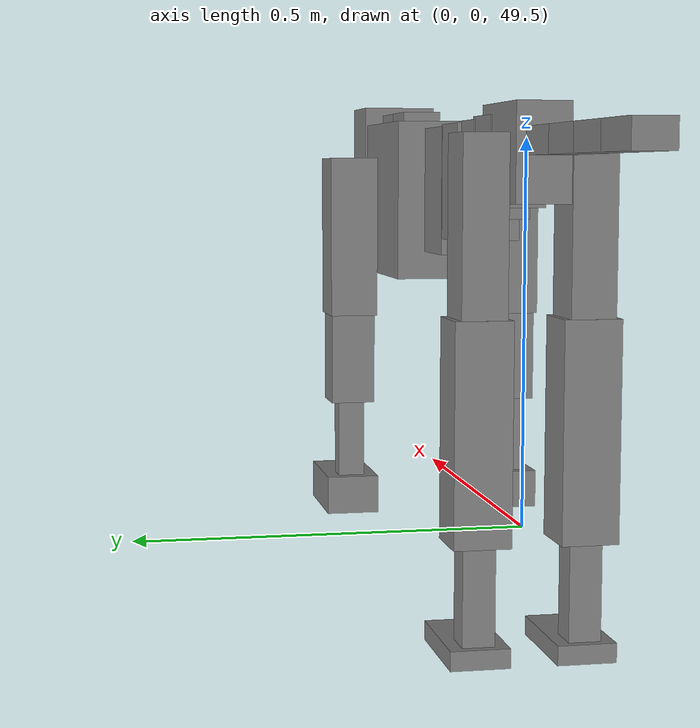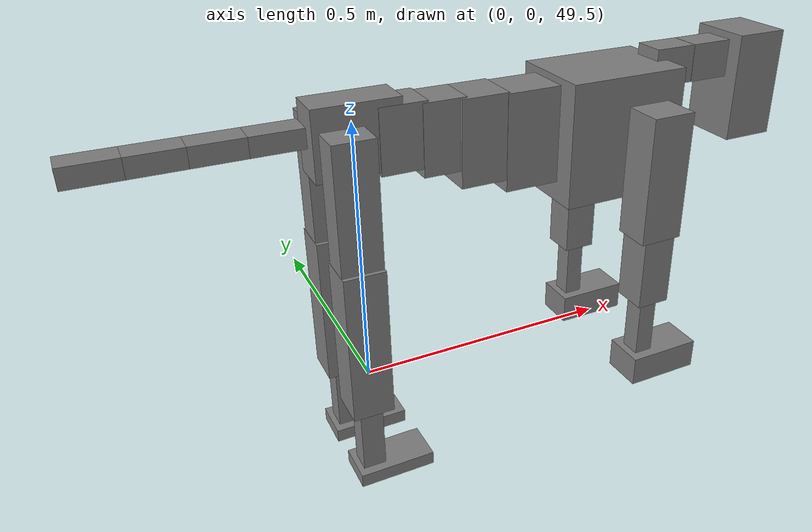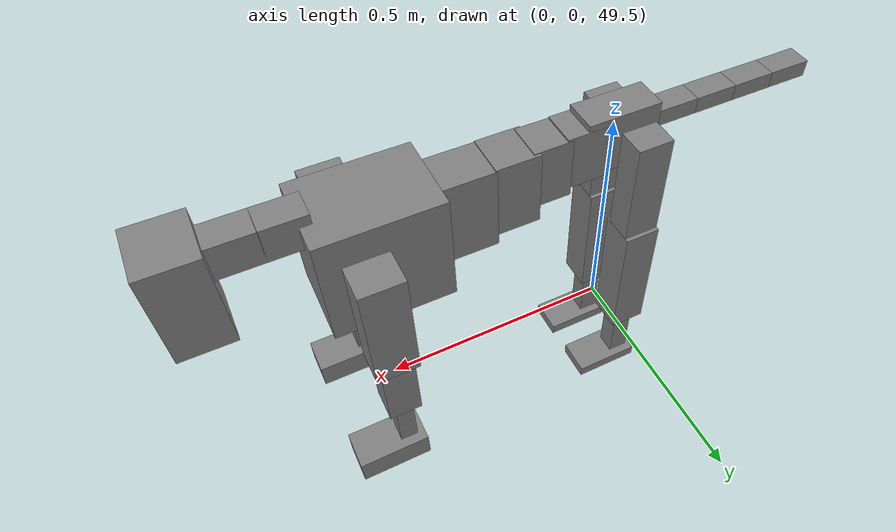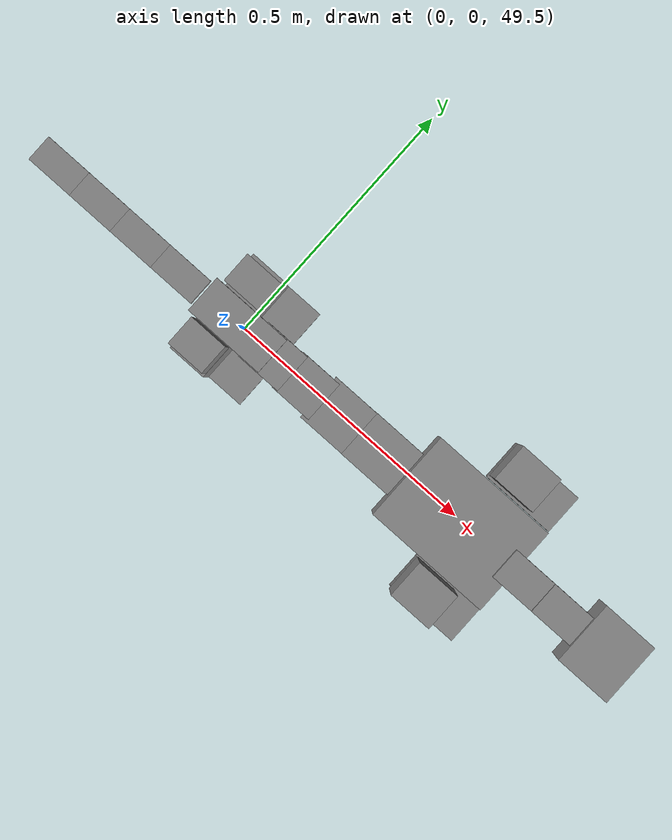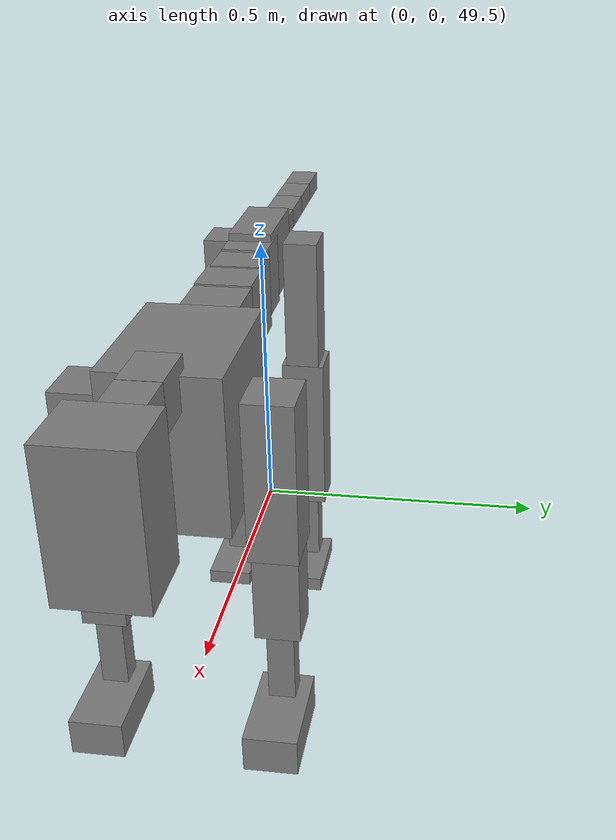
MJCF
<mujoco model="dog">

    <default>
        <joint armature="0.02" stiffness="1" damping="0.2" limited="true"/>
        <geom condim="3" friction="1 0.05 0.05" margin="0.01"/>
        <motor ctrllimited="true" ctrlrange="-1.0 1.0" forcelimited="true" gear="50"/>
    </default>

    <compiler inertiafromgeom="true" angle="radian"/>

    <option timestep="0.016" iterations="50" tolerance="1e-10" solver="Newton" jacobian="dense" cone="pyramidal"/>

    <size nconmax="20000" njmax="60000" nstack="5000000"/>
    <visual>
        <map force="0.1" zfar="30"/>
        <rgba haze="0.15 0.25 0.35 1"/>
        <quality shadowsize="2048"/>
        <global offwidth="800" offheight="800"/>
    </visual>

    <asset>
        <texture type="skybox" builtin="gradient" rgb1="0.3 0.5 0.7" rgb2="0 0 0" width="512" height="512"/>
        <texture name="texplane" type="2d" builtin="checker" rgb1=".2 .3 .4" rgb2=".1 0.15 0.2" width="512" height="512"
                 mark="cross" markrgb=".8 .8 .8"/>
        <texture name="texgeom" type="cube" builtin="flat" mark="cross" width="127" height="1278" rgb1="0.8 0.6 0.4"
                 rgb2="0.8 0.6 0.4" markrgb="1 1 1" random="0.01"/>

        <material name="matplane" reflectance="0.3" texture="texplane" texrepeat="1 1" texuniform="true"/>
        <material name="matgeom" texture="texgeom" texuniform="true" rgba="0.8 0.6 .4 1"/>
    </asset>

    <worldbody>
        <geom name="floor" pos="0 0 0" size="0 0 .25" type="plane" material="matplane" condim="3"/>

        <light directional="false" diffuse=".2 .2 .2" specular="0 0 0" pos="0 0 5" dir="0 0 -1" castshadow="false"/>
        <light mode="targetbodycom" target="torso" directional="false" diffuse=".8 .8 .8" specular="0.3 0.3 0.3"
               pos="0 0 4.0" dir="0 0 -1"/>

        <body name="root" pos="0 0 50">
            <freejoint name="root_1"/>
            <geom type="box" pos="0 0 -0.02" size="0.0774  0.0358  0.063" density="2030"/>

            <body name="spine1" pos="0.054 0 0">
                <joint name="spine1_y" axis="0 1 0" range="0 0.7" limited="true"/>
                <geom type="box" pos="0.02375 0 -0.03" size="0.04375  0.0375  0.05985" density="2030"/>

                <body name="spine2" pos="0.0612 0 0">
                    <joint name="spine2_y" axis="0 1 0" range="-0.15 0.15" limited="true"/>
                    <geom type="box" pos="0.03555  0  -0.04" size="0.04055  0.039  0.06615" density="2030"/>

                    <body name="spine3" pos="0.0730 0 0">
                        <joint name="spine3_y" axis="0 1 0" range="-0.15 0.15" limited="true"/>
                        <geom type="box" pos="0.03555  0  -0.057" size="0.04555  0.0445  0.081" density="2030"/>

                        <body name="spine4" pos="0.0780 0 0">
                            <joint name="spine4_y" axis="0 1 0" range="-0.15 0.15" limited="true"/>
                            <geom type="box" pos="0.05265  0  -0.07" size="0.05265  0.045  0.09135" density="2030"/>

                            <body name="torso" pos="0.1082 0 0">
                                <joint name="torso_y" axis="0 1 0" range="-0.15 0.15" limited="true"/>
                                <geom type="box" pos="0.11925  0  -0.085" size="0.11925  0.085  0.11745"
                                      density="2030"/>

                                <body name="neck1" pos="0.2160  0   0.0180">
                                    <joint name="neck1_y" axis="0 1 0" range="-1.2  -1" limited="true"/>
                                    <geom type="box" pos="0.0423  0  0" size="0.0423  0.03  0.036" density="2325"/>

                                    <body name="neck2" pos="0.0853  0  0">
                                        <joint name="neck2_y" axis="0 1 0" range="0.1  0" limited="true"/>
                                        <geom type="box" pos="0.0423  0  0" size="0.0423  0.03  0.036" density="2325"/>

                                        <body name="head" pos="0.0853  0  0">
                                            <joint name="head_y" axis="0 1 0" range="-0.3  -0.2" limited="true"/>
                                            <geom type="box" pos="0.0531  0  -0.055" size="0.0531  0.06  0.1044"
                                                  density="4030"/>

                                        </body>
                                    </body>
                                </body>

                                <body name="front_shoulder" pos="0.156  0   -0.0480">
                                    <joint name="front_shoulder_y" axis="0 1 0" range="-1 1.5" limited="true"/>
                                    <geom type="box" pos="0 0.13 -0.0960" size="0.0425  0.0364  0.1226" density="1158"/>
                                    <geom type="box" pos="0 -0.13 -0.0960" size="0.0425  0.0364  0.1226"
                                          density="1158"/>

                                    <body name="front_elbow" pos="0  0  -0.1919">
                                        <joint name="front_elbow_y" axis="0 1 0" range="-2 0" limited="true"/>
                                        <geom type="box" pos="0 0.13 -0.0827" size="0.0331  0.0338  0.0827"
                                              density="1081"/>
                                        <geom type="box" pos="0 -0.13 -0.0827" size="0.0331  0.0338  0.0827"
                                              density="1081"/>

                                        <body name="front_wrist" pos="0  0  -0.1653">
                                            <joint name="front_wrist_y" axis="0 1 0" range="-0.2 0" limited="true"/>
                                            <geom type="box" pos="0 0.13 -0.0668" size="0.0183  0.0203  0.0800"
                                                  density="1664"/>
                                            <geom type="box" pos="0 -0.13 -0.0668" size="0.0183  0.0203  0.0800"
                                                  density="1664"/>

                                            <body name="front_finger_end" pos="0  0  -0.1336">
                                                <joint name="front_finger_y" axis="0 1 0" range="-0.4 1"
                                                       limited="true"/>
                                                <geom type="box" pos="0.0403  0.13  -0.0143"
                                                      size="0.0738  0.0403  0.0293" density="1515"/>
                                                <geom type="box" pos="0.0403  -0.13  -0.0143"
                                                      size="0.0738  0.0403  0.0293" density="1515"/>

                                            </body>

                                        </body>
                                    </body>
                                </body>

                            </body>
                        </body>
                    </body>
                </body>
            </body>

            <body name="back_hip" pos="-0.03 0 -0.018">
                <joint name="back_hip_y" axis="0 1 0" range="-1.5 0.3" limited="true"/>
                <geom type="box" pos="0 0.07 -0.1118" size="0.0376  0.0295  0.1346" density="1154"/>
                <geom type="box" pos="0 -0.07 -0.1118" size="0.0376  0.0295  0.1346" density="1154"/>

                <body name="back_knee" pos="0  0  -0.2236">
                    <joint name="back_knee_y" axis="0 1 0" range="0 2.8" limited="true"/>
                    <geom type="box" pos="0 0.07 -0.1278" size="0.0381  0.0376  0.1433" density="1227"/>
                    <geom type="box" pos="0 -0.07 -0.1278" size="0.0381  0.0376  0.1433" density="1227"/>

                    <body name="back_ankle" pos="0  0  -0.2555">
                        <joint name="back_ankle_y" axis="0 1 0" range="-2.2 0" limited="true"/>
                        <geom type="box" pos="0 0.07 -0.0800" size="0.0215  0.0215  0.0912" density="1284"/>
                        <geom type="box" pos="0 -0.07 -0.0800" size="0.0215  0.0215  0.0912" density="1284"/>

                        <body name="back_toe_end" pos="0  0  -0.1600">
                            <joint name="back_toe_y" axis="0 1 0" range="-0.4 1" limited="true"/>
                            <geom type="box" pos="0.0392  0.07  0.0021" size="0.0718  0.0392  0.0129" density="1515"/>
                            <geom type="box" pos="0.0392  -0.07  0.0021" size="0.0718  0.0392  0.0129" density="1515"/>

                        </body>
                    </body>
                </body>
            </body>

            <body name="tail1" pos="-0.074 0 -0.006">
                <joint name="tail1_y" axis="0 1 0" range="-0.2 0.2" limited="true"/>
                <geom type="box" pos="-0.0536  0  0" size="0.045  0.025  0.0175" density="1587"/>

                <body name="tail2" pos="-0.09 0 0">
                    <joint name="tail2_y" axis="0 1 0" range="-0.2 0.2" limited="true"/>
                    <geom type="box" pos="-0.0536  0  0" size="0.045  0.025  0.0175" density="1587"/>

                    <body name="tail3" pos="-0.09 0 0">
                        <joint name="tail3_y" axis="0 1 0" range="-0.2 0.2" limited="true"/>
                        <geom type="box" pos="-0.0536  0  0" size="0.045  0.025  0.0175" density="1587"/>

                        <body name="tail4" pos="-0.09 0 0">
                            <joint name="tail4_y" axis="0 1 0" range="-0.2 0.2" limited="true"/>
                            <geom type="box" pos="-0.0536  0  0" size="0.045  0.025  0.0175" density="1587"/>

                        </body>
                    </body>
                </body>
            </body>
        </body>
    </worldbody>

    <actuator>
        <motor joint="spine1_y" forcerange="-150 150     "/>
        <motor joint="spine2_y" forcerange="-150 150     "/>
        <motor joint="spine3_y" forcerange="-150 150     "/>
        <motor joint="spine4_y" forcerange="-150 150     "/>
        <motor joint="torso_y" forcerange="-150 150     "/>
        <motor joint="neck1_y" forcerange="-100 100       "/>
        <motor joint="neck2_y" forcerange="-100 100       "/>
        <motor joint="head_y" forcerange="-150 150       "/>
        <motor joint="front_shoulder_y" forcerange="-171.79 170.65"/>
        <motor joint="front_elbow_y" forcerange="-192.60 153.29"/>
        <motor joint="front_wrist_y" forcerange="-109.48 53.20"/>
        <motor joint="front_finger_y" forcerange="-78.44 96.37"/>
        <motor joint="back_hip_y" forcerange="-229.65 363.76"/>
        <motor joint="back_knee_y" forcerange="-354.18 392.19"/>
        <motor joint="back_angle_y" forcerange="-55.47 189.31"/>
        <motor joint="back_toe_y" forcerange="-133.04 100.21"/>
        <motor joint="tail1_y" forcerange="-50 50     "/>
        <motor joint="tail2_y" forcerange="-50 50     "/>
        <motor joint="tail3_y" forcerange="-50 50     "/>
        <motor joint="tail4_y" forcerange="-50 50     "/>
    </actuator>
</mujoco>
